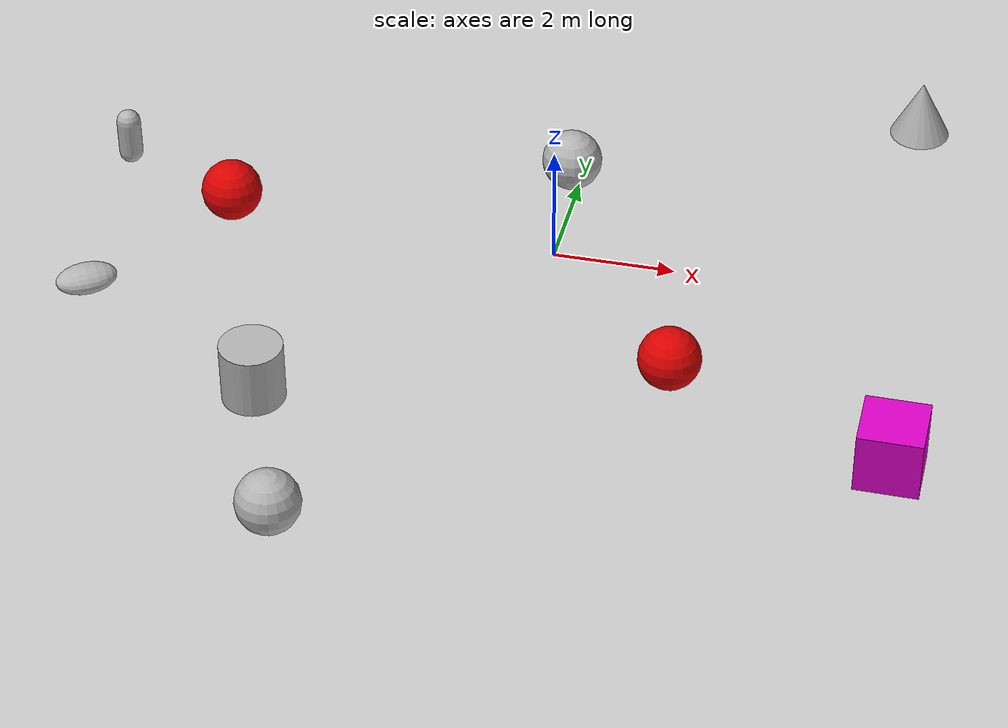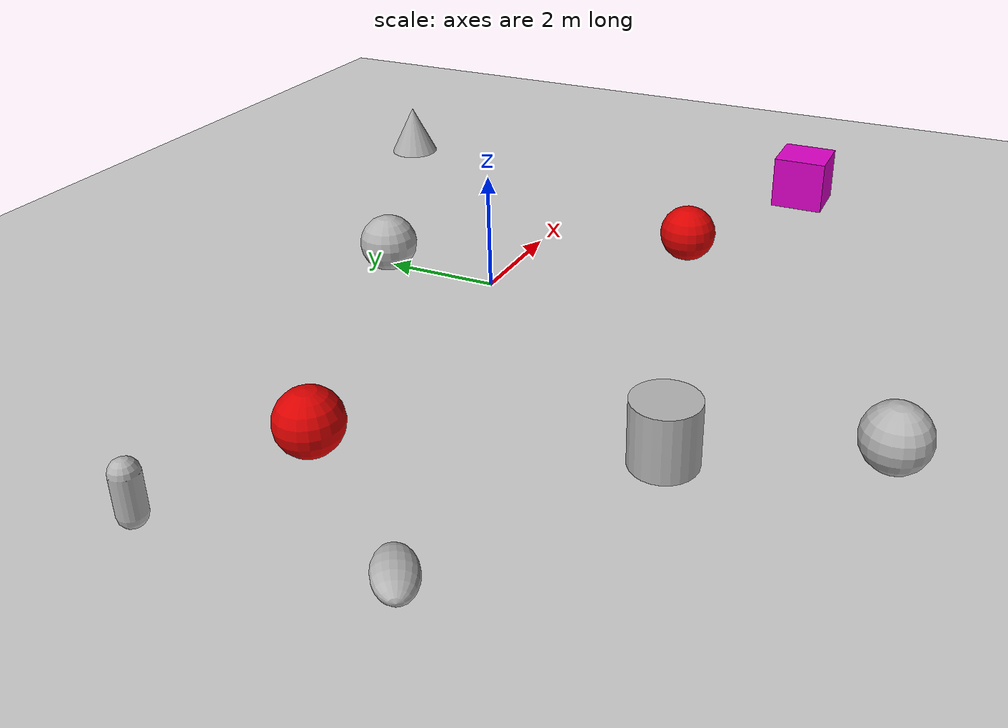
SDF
<sdf version="1.10">
 <world name="empty">
  <physics name="1ms" type="ignored">
   <max_step_size>0.001</max_step_size>
   <real_time_factor>1</real_time_factor>
   <real_time_update_rate>1000</real_time_update_rate>
  </physics>
  <plugin name="gz::sim::systems::Physics" filename="gz-sim-physics-system"/>
  <plugin name="gz::sim::systems::UserCommands" filename="gz-sim-user-commands-system"/>
  <plugin name="gz::sim::systems::SceneBroadcaster" filename="gz-sim-scene-broadcaster-system"/>
  <plugin name="gz::sim::systems::Contact" filename="gz-sim-contact-system"/>
  <gravity>0 0 -9.8000000000000007</gravity>
  <magnetic_field>5.5644999999999998e-06 2.2875799999999999e-05 -4.2388400000000002e-05</magnetic_field>
  <atmosphere type="adiabatic"/>
  <scene>
   <ambient>0.400000006 0.400000006 0.400000006 1</ambient>
   <background>0.699999988 0.699999988 0.699999988 1</background>
   <shadows>true</shadows>
  </scene>
  <model name="ground_plane">
   <static>true</static>
   <link name="link">
    <collision name="collision">
     <geometry><plane><normal>0 0 1</normal><size>100 100</size></plane></geometry>
    </collision>
    <visual name="visual">
     <geometry><plane><normal>0 0 1</normal><size>100 100</size></plane></geometry>
     <material>
      <ambient>0.800000012 0.800000012 0.800000012 1</ambient>
      <diffuse>0.800000012 0.800000012 0.800000012 1</diffuse>
      <specular>0.800000012 0.800000012 0.800000012 1</specular>
     </material>
    </visual>
    <inertial>
     <mass>1</mass>
     <inertia><ixx>1</ixx><ixy>0</ixy><ixz>0</ixz><iyy>1</iyy><iyz>0</iyz><izz>1</izz></inertia>
    </inertial>
   </link>
  </model>
  <model name="box">
   <pose>6.0349798202514648 -4.0636801719665527 0.49999999990199806 4.6104434025228695e-21 -1.4755171391438518e-21 -4.5824468075778911e-22</pose>
   <link name="box_link">
    <inertial>
     <inertia><ixx>0.16666</ixx><ixy>0</ixy><ixz>0</ixz><iyy>0.16666</iyy><iyz>0</iyz><izz>0.16666</izz></inertia>
     <mass>1</mass>
    </inertial>
    <collision name="box_collision"><geometry><box><size>1 1 1</size></box></geometry></collision>
    <visual name="box_visual">
     <geometry><box><size>1 1 1</size></box></geometry>
     <material>
      <ambient>0.300000012 0.300000012 0.300000012 1</ambient>
      <diffuse>0.86415 0.00271 0.78 1</diffuse>
      <specular>1 1 1 1</specular>
     </material>
    </visual>
   </link>
   <static>false</static>
  </model>
  <model name="cone">
   <pose>5.3831429813762846 4.7897616025704117 0.49999999993296756 5.2548544155140844e-17 -7.7132841038066057e-10 -1.848369177196814e-23</pose>
   <link name="cone_link">
    <inertial>
     <inertia>
      <ixx>0.074999999999999997</ixx>
      <ixy>0</ixy>
      <ixz>0</ixz>
      <iyy>0.074999999999999997</iyy>
      <iyz>0</iyz>
      <izz>0.074999999999999997</izz>
     </inertia>
     <mass>1</mass>
    </inertial>
    <collision name="cone_collision">
     <geometry><cone><radius>0.5</radius><length>1</length></cone></geometry>
    </collision>
    <visual name="cone_visual">
     <geometry><cone><radius>0.5</radius><length>1</length></cone></geometry>
     <material>
      <ambient>0.300000012 0.300000012 0.300000012 1</ambient>
      <diffuse>0.699999988 0.699999988 0.699999988 1</diffuse>
      <specular>1 1 1 1</specular>
     </material>
    </visual>
   </link>
   <static>false</static>
  </model>
  <model name="cylinder">
   <pose>-3.7244614362437956 -4.5100243089746419 0.49999942638036005 -1.6489635791491826e-19 9.8879298002299211e-20 4.3068522468604751e-21</pose>
   <link name="cylinder_link">
    <inertial>
     <inertia>
      <ixx>0.14580000000000001</ixx>
      <ixy>0</ixy>
      <ixz>0</ixz>
      <iyy>0.14580000000000001</iyy>
      <iyz>0</iyz>
      <izz>0.125</izz>
     </inertia>
     <mass>1</mass>
    </inertial>
    <collision name="cylinder_collision">
     <geometry><cylinder><radius>0.5</radius><length>1</length></cylinder></geometry>
    </collision>
    <visual name="cylinder_visual">
     <geometry><cylinder><radius>0.5</radius><length>1</length></cylinder></geometry>
     <material>
      <ambient>0.300000012 0.300000012 0.300000012 1</ambient>
      <diffuse>0.699999988 0.699999988 0.699999988 1</diffuse>
      <specular>1 1 1 1</specular>
     </material>
    </visual>
   </link>
   <static>false</static>
  </model>
  <model name="capsule">
   <pose>-7.5740690231323242 0.96042400598526001 0.499999999902001 0 0 0</pose>
   <link name="capsule_link">
    <inertial>
     <inertia>
      <ixx>0.074153999999999998</ixx>
      <ixy>0</ixy>
      <ixz>0</ixz>
      <iyy>0.074153999999999998</iyy>
      <iyz>0</iyz>
      <izz>0.018769000000000001</izz>
     </inertia>
     <mass>1</mass>
    </inertial>
    <collision name="capsule_collision">
     <geometry>
      <capsule><radius>0.20000000000000001</radius><length>0.59999999999999998</length></capsule>
     </geometry>
    </collision>
    <visual name="capsule_visual">
     <geometry>
      <capsule><radius>0.20000000000000001</radius><length>0.59999999999999998</length></capsule>
     </geometry>
     <material>
      <ambient>0.300000012 0.300000012 0.300000012 1</ambient>
      <diffuse>0.699999988 0.699999988 0.699999988 1</diffuse>
      <specular>1 1 1 1</specular>
     </material>
    </visual>
   </link>
   <static>false</static>
  </model>
  <model name="ellipsoid">
   <pose>-7.1466212619727862 -2.4977456697735181 0.1508470281856315 1.5706256072397353 -1.3774894915357834 -0.98603043754230979</pose>
   <link name="ellipsoid_link">
    <inertial>
     <inertia>
      <ixx>0.068000000000000005</ixx>
      <ixy>0</ixy>
      <ixz>0</ixz>
      <iyy>0.058000000000000003</iyy>
      <iyz>0</iyz>
      <izz>0.025999999999999999</izz>
     </inertia>
     <mass>1</mass>
    </inertial>
    <collision name="ellipsoid_collision">
     <geometry><ellipsoid><radii>0.20000000000000001 0.29999999999999999 0.5</radii></ellipsoid></geometry>
    </collision>
    <visual name="ellipsoid_visual">
     <geometry><ellipsoid><radii>0.20000000000000001 0.29999999999999999 0.5</radii></ellipsoid></geometry>
     <material>
      <ambient>0.300000012 0.300000012 0.300000012 1</ambient>
      <diffuse>0.699999988 0.699999988 0.699999988 1</diffuse>
      <specular>1 1 1 1</specular>
     </material>
    </visual>
   </link>
   <static>false</static>
  </model>
  <model name="sphere">
   <pose>-0.13357327973892197 1.9803964162137448 0.499999999902001 0 0 0</pose>
   <link name="sphere_link">
    <inertial>
     <inertia>
      <ixx>0.10000000000000001</ixx>
      <ixy>0</ixy>
      <ixz>0</ixz>
      <iyy>0.10000000000000001</iyy>
      <iyz>0</iyz>
      <izz>0.10000000000000001</izz>
     </inertia>
     <mass>1</mass>
    </inertial>
    <collision name="sphere_collision"><geometry><sphere><radius>0.5</radius></sphere></geometry></collision>
    <visual name="sphere_visual">
     <geometry><sphere><radius>0.5</radius></sphere></geometry>
     <material>
      <ambient>0.300000012 0.300000012 0.300000012 1</ambient>
      <diffuse>0.699999988 0.699999988 0.699999988 1</diffuse>
      <specular>1 1 1 1</specular>
     </material>
    </visual>
   </link>
   <static>false</static>
  </model>
  <model name="sphere_0">
   <pose>-2.6248824365954535 -7.3041134299760522 0.499999999902001 0 0 0</pose>
   <link name="sphere_link">
    <inertial>
     <inertia>
      <ixx>0.10000000000000001</ixx>
      <ixy>0</ixy>
      <ixz>0</ixz>
      <iyy>0.10000000000000001</iyy>
      <iyz>0</iyz>
      <izz>0.10000000000000001</izz>
     </inertia>
     <mass>1</mass>
    </inertial>
    <collision name="sphere_collision"><geometry><sphere><radius>0.5</radius></sphere></geometry></collision>
    <visual name="sphere_visual">
     <geometry><sphere><radius>0.5</radius></sphere></geometry>
     <material>
      <ambient>0.300000012 0.300000012 0.300000012 1</ambient>
      <diffuse>0.699999988 0.699999988 0.699999988 1</diffuse>
      <specular>1 1 1 1</specular>
     </material>
    </visual>
   </link>
   <static>false</static>
  </model>
  <model name="sphere_1">
   <pose>2.4369668547198398 -2.780910812859803 0.499999999902001 0 0 0</pose>
   <link name="sphere_link">
    <inertial>
     <inertia>
      <ixx>0.10000000000000001</ixx>
      <ixy>0</ixy>
      <ixz>0</ixz>
      <iyy>0.10000000000000001</iyy>
      <iyz>0</iyz>
      <izz>0.10000000000000001</izz>
     </inertia>
     <mass>1</mass>
    </inertial>
    <collision name="sphere_collision"><geometry><sphere><radius>0.5</radius></sphere></geometry></collision>
    <visual name="sphere_visual">
     <geometry><sphere><radius>0.5</radius></sphere></geometry>
     <material>
      <ambient>0.300000012 0.300000012 0.300000012 1</ambient>
      <diffuse>0.85865 0.00271 0.0 1</diffuse>
      <emissive>0.85865 0.00271 0.0 1</emissive>
      <specular>1 1 1 1</specular>
     </material>
    </visual>
   </link>
   <static>false</static>
  </model>
  <model name="sphere_2">
   <pose>-5.4283757209777832 -0.11964000016450882 0.499999999902001 0 0 0</pose>
   <link name="sphere_link">
    <inertial>
     <inertia>
      <ixx>0.10000000000000001</ixx>
      <ixy>0</ixy>
      <ixz>0</ixz>
      <iyy>0.10000000000000001</iyy>
      <iyz>0</iyz>
      <izz>0.10000000000000001</izz>
     </inertia>
     <mass>1</mass>
    </inertial>
    <collision name="sphere_collision"><geometry><sphere><radius>0.5</radius></sphere></geometry></collision>
    <visual name="sphere_visual">
     <geometry><sphere><radius>0.5</radius></sphere></geometry>
     <material>
      <ambient>0.300000012 0.300000012 0.300000012 1</ambient>
      <diffuse>0.85865 0.00271 0.0 1</diffuse>
      <emissive>0.85865 0.00271 0.0 1</emissive>
      <specular>1 1 1 1</specular>
     </material>
    </visual>
   </link>
   <static>false</static>
  </model>
  <light name="sun" type="directional">
   <pose>0 0 10 0 0 0</pose>
   <intensity>1</intensity>
   <direction>-0.5 0.10000000000000001 -0.90000000000000002</direction>
   <diffuse>0.800000012 0.800000012 0.800000012 1</diffuse>
   <specular>0.200000003 0.200000003 0.200000003 1</specular>
   <attenuation>
    <range>1000</range>
    <linear>0.0099999997764825821</linear>
    <constant>0.89999997615814209</constant>
    <quadratic>0.0010000000474974513</quadratic>
   </attenuation>
   <spot><inner_angle>0</inner_angle><outer_angle>0</outer_angle><falloff>0</falloff></spot>
  </light>
 </world>
</sdf>
